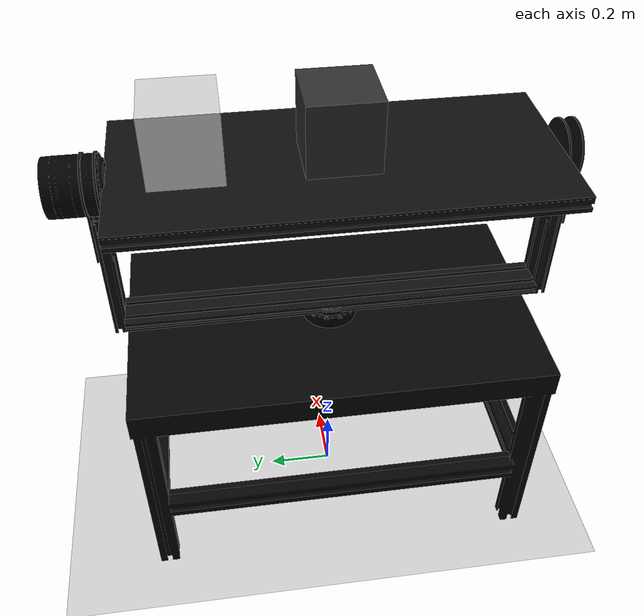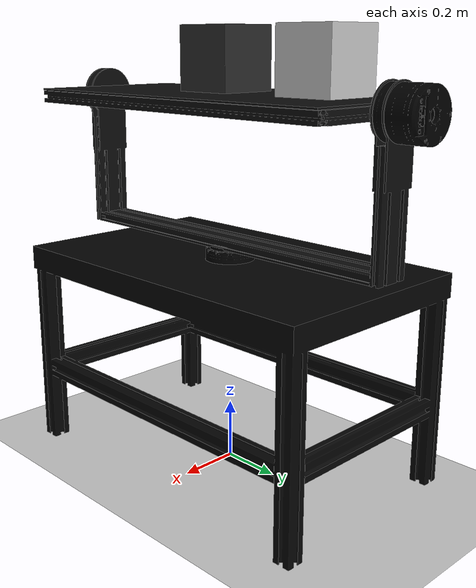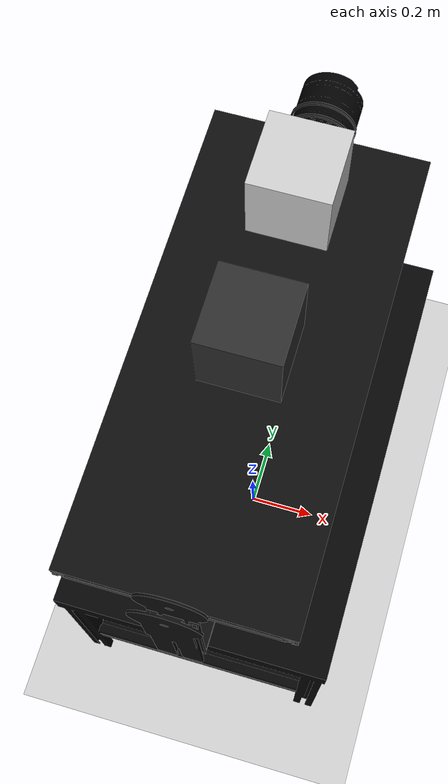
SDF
<?xml version="1.0" ?>
<sdf version="1.8">
    <world name="sensor_world">
        <physics name="1ms" type="ode">
            <max_step_size>0.001</max_step_size>
            <real_time_factor>1.0</real_time_factor>
        </physics>

        <plugin filename="gz-sim-physics-system" name="gz::sim::systems::Physics"/>
        <plugin filename="gz-sim-user-commands-system" name="gz::sim::systems::UserCommands"/>
        <plugin filename="gz-sim-scene-broadcaster-system" name="gz::sim::systems::SceneBroadcaster"/>
        <plugin filename="gz-sim-imu-system" name="gz::sim::systems::Imu"/>
        <plugin filename="gz-sim-sensors-system" name="gz::sim::systems::Sensors">
            <render_engine>ogre</render_engine>
        </plugin>
        <plugin filename="gz-sim-contact-system" name="gz::sim::systems::Contact"/>

        <model name="ground_plane">
            <static>true</static>
            <link name="link">
                <collision name="collision">
                    <geometry>
                        <plane>
                            <normal>0 0 1</normal>
                        </plane>
                    </geometry>
                </collision>
                <visual name="visual">
                    <geometry>
                        <plane>
                            <normal>0 0 1</normal>
                            <size>100 100</size>
                        </plane>
                    </geometry>
                    <material>
                        <ambient>0.8 0.8 0.8 1</ambient>
                        <diffuse>0.8 0.8 0.8 1</diffuse>
                        <specular>0.8 0.8 0.8 1</specular>
                    </material>
                </visual>
            </link>
        </model>

        <model name="sun">
            <static>true</static>
            <pose>0 0 10 0 0 0</pose>
            <link name="sun_link">
                <light type="directional" name="sun_light">
                    <cast_shadows>true</cast_shadows>
                    <diffuse>1.0 1.0 0.8 1</diffuse>
                    <specular>0.2 0.2 0.2 1</specular>
                    <attenuation>
                        <range>1000</range>
                        <constant>0.9</constant>
                        <linear>0.01</linear>
                        <quadratic>0.001</quadratic>
                    </attenuation>
                    <direction>-0.5 0.1 -0.9</direction>
                </light>
            </link>
        </model>

        <model name='pan_tilt_system' canonical_link='base'>
            <pose relative_to='world'>0 0 1.0 0 0 0</pose>

            <link name='base'>
                <pose relative_to='__model__'>0 0 -1.0 0 0 1.5708</pose>
                <inertial>
                    <mass>50</mass>
                    <inertia>
                        <ixx>0.729165</ixx>
                        <ixy>0</ixy>
                        <ixz>0</ixz>
                        <iyy>0.729165</iyy>
                        <iyz>0</iyz>
                        <izz>0.625</izz>
                    </inertia>
                </inertial>
                <visual name='visual'>
                    <pose>0 0 0 0 0 0</pose>
                    <geometry>
                        <mesh>
                            <uri>file:///home/kimsh/ros2_ws/src/pan_tilt/sdf/meshes/base.dae</uri>
                            <scale>0.02 0.02 0.02</scale>
                        </mesh>
                    </geometry>
                </visual>
                <collision name="collision">
                    <pose>0 0 0 0 0 0</pose>
                    <geometry>
                        <mesh>
                            <uri>file:///home/kimsh/ros2_ws/src/pan_tilt/sdf/meshes/base.dae</uri>
                            <scale>0.02 0.02 0.02</scale>
                        </mesh>
                    </geometry>
                </collision>
            </link>

            <link name='pan_motor'>
                <pose relative_to='base'>0 0 0.68 1.5708 0 0</pose>
                <inertial>
                    <mass>5</mass>
                    <inertia>
                        <ixx>0.145833</ixx>
                        <ixy>0</ixy>
                        <ixz>0</ixz>
                        <iyy>0.145833</iyy>
                        <iyz>0</iyz>
                        <izz>0.125</izz>
                    </inertia>
                </inertial>
                <visual name='visual'>
                    <pose>0 0 0 0 0 0</pose>
                    <geometry>
                        <mesh>
                            <uri>file:///home/kimsh/ros2_ws/src/pan_tilt/sdf/meshes/ym080.dae</uri>
                            <scale>0.02 0.02 0.02</scale>
                        </mesh>
                    </geometry>
                </visual>
                <collision name="collision">
                    <pose>0 0 0 0 0 0</pose>
                    <geometry>
                        <mesh>
                            <uri>file:///home/kimsh/ros2_ws/src/pan_tilt/sdf/meshes/ym080.dae</uri>
                            <scale>0.02 0.02 0.02</scale>
                        </mesh>
                    </geometry>
                </collision>
            </link>

            <link name='pan_support'>
                <pose relative_to='pan_motor'>0.62 0.07 0 -1.5708 -1.5708 0</pose>
                <inertial>
                    <mass>5</mass>
                    <inertia>
                        <ixx>0.145833</ixx>
                        <ixy>0</ixy>
                        <ixz>0</ixz>
                        <iyy>0.145833</iyy>
                        <iyz>0</iyz>
                        <izz>0.125</izz>
                    </inertia>
                </inertial>
                <visual name='visual'>
                    <pose>0 0 0 0 0 0</pose>
                    <geometry>
                        <mesh>
                            <uri>file:///home/kimsh/ros2_ws/src/pan_tilt/sdf/meshes/pan_support.dae</uri>
                            <scale>0.02 0.02 0.02</scale>
                        </mesh>
                    </geometry>
                </visual>
                <collision name="collision">
                    <pose>0 0 0 0 0 0</pose>
                    <geometry>
                        <mesh>
                            <uri>file:///home/kimsh/ros2_ws/src/pan_tilt/sdf/meshes/pan_support.dae</uri>
                            <scale>0.02 0.02 0.02</scale>
                        </mesh>
                    </geometry>
                </collision>
            </link>

            <link name='tilt_motor'>
                <pose relative_to='pan_support'>0 0.04 0.464 3.14159 0 0</pose>
                <inertial>
                    <mass>5</mass>
                    <inertia>
                        <ixx>0.145833</ixx>
                        <ixy>0</ixy>
                        <ixz>0</ixz>
                        <iyy>0.145833</iyy>
                        <iyz>0</iyz>
                        <izz>0.125</izz>
                    </inertia>
                </inertial>
                <visual name='visual'>
                    <pose>0 0 0 0 0 0</pose>
                    <geometry>
                        <mesh>
                            <uri>file:///home/kimsh/ros2_ws/src/pan_tilt/sdf/meshes/ym080.dae</uri>
                            <scale>0.02 0.02 0.02</scale>
                        </mesh>
                    </geometry>
                </visual>
                <collision name="collision">
                    <pose>0 0 0 0 0 0</pose>
                    <geometry>
                        <mesh>
                            <uri>file:///home/kimsh/ros2_ws/src/pan_tilt/sdf/meshes/ym080.dae</uri>
                            <scale>0.02 0.02 0.02</scale>
                        </mesh>
                    </geometry>
                </collision>
            </link>

            <link name='plate'>
                <pose relative_to='tilt_motor'>0 0.68 0.02 3.14159 0 1.5708</pose>
                <inertial>
                    <mass>1</mass>
                    <inertia>
                        <ixx>0.145833</ixx>
                        <ixy>0</ixy>
                        <ixz>0</ixz>
                        <iyy>0.145833</iyy>
                        <iyz>0</iyz>
                        <izz>0.125</izz>
                    </inertia>
                </inertial>
                <visual name='visual'>
                    <pose>0 0 0 0 0 0</pose>
                    <geometry>
                        <mesh>
                            <uri>file:///home/kimsh/ros2_ws/src/pan_tilt/sdf/meshes/plate.dae</uri>
                            <scale>0.02 0.02 0.02</scale>
                        </mesh>
                    </geometry>
                </visual>
                <collision name="collision">
                    <pose>0 0 0 0 0 0</pose>
                    <geometry>
                        <mesh>
                            <uri>file:///home/kimsh/ros2_ws/src/pan_tilt/sdf/meshes/plate.dae</uri>
                            <scale>0.02 0.02 0.02</scale>
                        </mesh>
                    </geometry>
                </collision>
            </link>

	    <!-- Camera -->
	    <link name="camera_link">
	        <pose relative_to='plate'>0 0 0.15 0 0 1.5708</pose>
		<inertial>
		    <pose>0 0 0 0 0 0</pose>
		    <mass>0.1</mass>
                    <inertia>
			<ixx>0.001</ixx>
			<ixy>0</ixy>
			<ixz>0</ixz>
			<iyy>0.001</iyy>
			<iyz>0</iyz>
			<izz>0.001</izz>
                    </inertia>
		</inertial>
		<collision name='camera_collision'>
		    <pose>0 0 0 0 0 0</pose>
		    <geometry>
			<box>
			    <size>0.2 0.2 0.2</size>
			</box>
		    </geometry>
		    <surface>
			<friction>
			    <ode>
			        <mu>1</mu>
				<mu2>1</mu2>
			    </ode>
			</friction>
			<contact>
			    <ode>
			        <kp>1e+8</kp>
				<kd>1</kd>
				<max_vel>0.01</max_vel>
				<min_depth>0.001</min_depth>
			    </ode>
			</contact>
		    </surface>
		</collision>
		<visual name='camera_visual'>
		    <pose>0 0 0 0 0 0</pose>
		    <geometry>
			<box>
			    <size>0.2 0.2 0.2</size>
			</box>
		    </geometry>
		    <material>
			<ambient>.175 .175 .175  1.0</ambient>
			<diffuse>.175 .175 .175  1.0</diffuse>
			<specular>.175 .175 .175  1.0</specular>
		    </material>
		</visual>
		<sensor name="camera_sensor" type="camera">
		    <pose>0 0 0 0 0 0</pose>
		    <camera>
			<horizontal_fov>1.204</horizontal_fov>
			<image>
			    <width>640</width>
			    <height>480</height>
			    <format>R8G8B8</format>
			</image>
			<clip>
			    <near>0.1</near>
			    <far>100</far>
			</clip>
		    </camera>
		    <always_on>true</always_on>
		    <update_rate>30</update_rate>
		    <visualize>true</visualize>
                    <topic>/image_raw</topic>
		</sensor>
	    </link>

	    <!-- Lidar -->
	    <link name="lidar_link">
	  	<pose relative_to='plate'>-0.4 0 0.15 0 0 1.5708</pose>
		<inertial>
		    <pose>0 0 0 0 0 0</pose>
		    <mass>0.1</mass>
                    <inertia>
			<ixx>0.001</ixx>
			<ixy>0</ixy>
			<ixz>0</ixz>
			<iyy>0.001</iyy>
			<iyz>0</iyz>
			<izz>0.001</izz>
                    </inertia>
		</inertial>
		<collision name='lidar_collision'>
		    <geometry>
			<box>
			    <size>0.2 0.2 0.2</size>
			</box>
		    </geometry>
		    <surface>
		        <friction>
			    <ode>
			        <mu>1</mu>
				<mu2>1</mu2>
			    </ode>
			</friction>
			<contact>
			    <ode>
				<kp>1e+8</kp>
				<kd>1</kd>
				<max_vel>0.01</max_vel>
				<min_depth>0.001</min_depth>
			    </ode>
			</contact>
		    </surface>
		</collision>
		<visual name='lidar_visual'>
		    <geometry>
			<box>
			    <size>0.2 0.2 0.2</size>
			</box>
		    </geometry>
		    <material>
			<ambient>0.8 0.8 0.8 1.0</ambient>
			<diffuse>0.8 0.8 0.8 1.0</diffuse>
			<specular>0.2 0.2 0.2 1.0</specular>
		    </material>
		</visual>
                <sensor name='gpu_lidar' type='gpu_lidar'>
                    <pose relative_to='lidar_link'>0 0 -0.2 0 0 0</pose>
                    <update_rate>10</update_rate>
                    <ray>
                        <scan>
                            <horizontal>
                                <samples>1024</samples>
                                <resolution>1</resolution>
                                <min_angle>-0.61548</min_angle>
                                <max_angle>0.61548</max_angle>
                            </horizontal>
                            <vertical>
                                <samples>128</samples>
                                <resolution>1</resolution>
                                <min_angle>-0.67474</min_angle>
                                <max_angle>0.67474</max_angle>
                            </vertical>
                        </scan>
                        <range>
                            <min>0.08</min>
                            <max>100.0</max>
                            <resolution>0.02</resolution>
                        </range>
                        <noise>
                            <type>gaussian</type>
                            <mean>0</mean>
                            <stddev>0.01</stddev>
                        </noise>
                    </ray>
                    <always_on>1</always_on>
                    <visualize>true</visualize>
                    <topic>scan</topic>
                    <gz_frame_id>livox/sensor</gz_frame_id>
                </sensor>
	    </link>

            <joint name='base_joint' type='revolute'>
                <parent>base</parent>
                <child>pan_motor</child>
                <axis>
                    <xyz>0 1 0</xyz>
                    <limit>
                        <lower>-1e16</lower>
                        <upper>1e16</upper>
                        <effort>5e6</effort>
                    </limit>
                </axis>
            </joint>

            <joint name='pan_motor_joint' type='fixed'>
                <parent>pan_motor</parent>
                <child>pan_support</child>
            </joint>

            <joint name='pan_support_joint' type='fixed'>
                <parent>pan_support</parent>
                <child>tilt_motor</child>
            </joint>

            <joint name='tilt_motor_joint' type='revolute'>
                <parent>pan_support</parent>
                <child>plate</child>
                <axis>
                    <xyz>1 0 0</xyz>
                    <limit>
                        <lower>-1e16</lower>
                        <upper>1e16</upper>
                        <effort>5e6</effort>
                    </limit>
                </axis>
            </joint>

            <joint name='plate_gimbal_joint' type='fixed'>
                <parent>plate</parent>
                <child>camera_link</child>
                <pose>0 0 -0.5 0 0 3.14</pose>
            </joint>

            <joint name='plate_lidar_joint' type='fixed'>
                <parent>plate</parent>
                <child>lidar_link</child>
                <pose>0 0 -0.5 0 0 3.14</pose>
            </joint>

            <plugin filename="gz-sim-joint-controller-system" name="gz::sim::systems::JointController">
                <joint_name>base_joint</joint_name>
                <topic>/pan/command</topic>
                <velocity_pid>
                    <p>1.0</p>
                    <i>0.0</i>
                    <d>0.0</d>
                    <reset_on_setpoint_change>true</reset_on_setpoint_change>
                </velocity_pid>
            </plugin>

            <plugin filename="gz-sim-joint-controller-system" name="gz::sim::systems::JointController">
                <joint_name>tilt_motor_joint</joint_name>
                <topic>/tilt/command</topic>
                <velocity_pid>
                    <p>1.0</p>
                    <i>0.0</i>
                    <d>0.0</d>
                    <reset_on_setpoint_change>true</reset_on_setpoint_change>
                </velocity_pid>
            </plugin>
        </model>
    </world>
</sdf>
